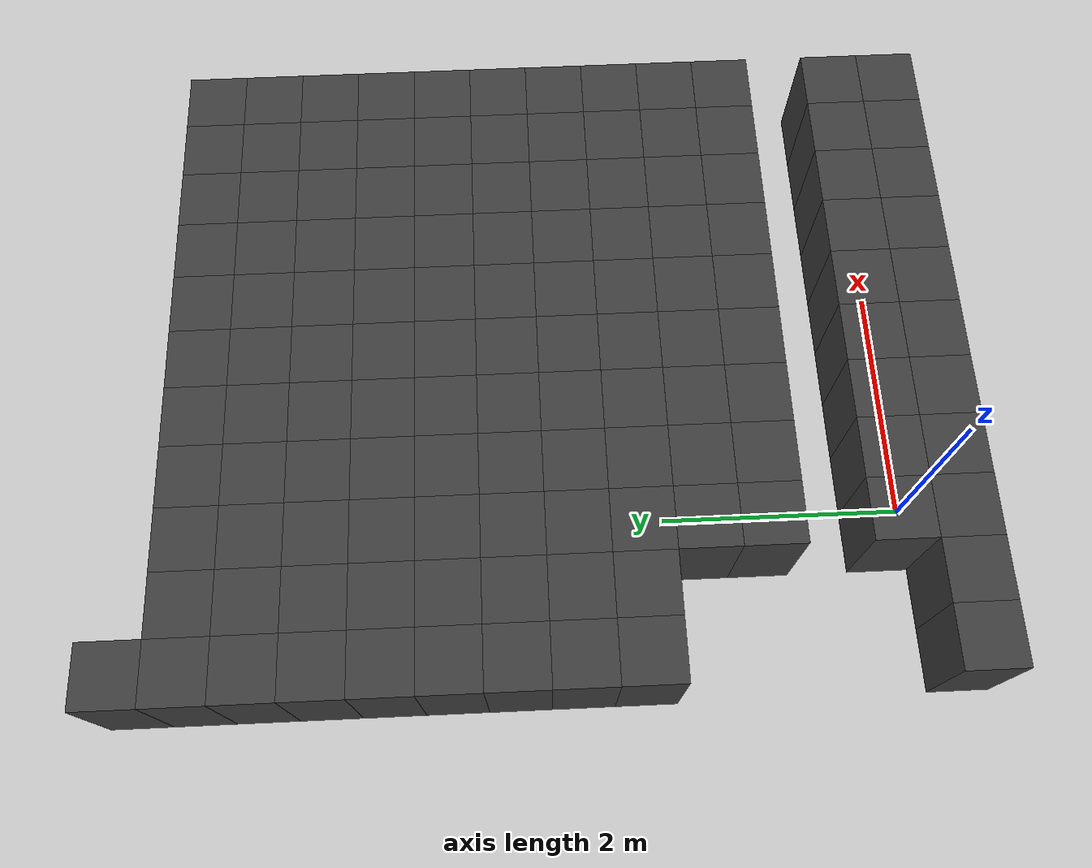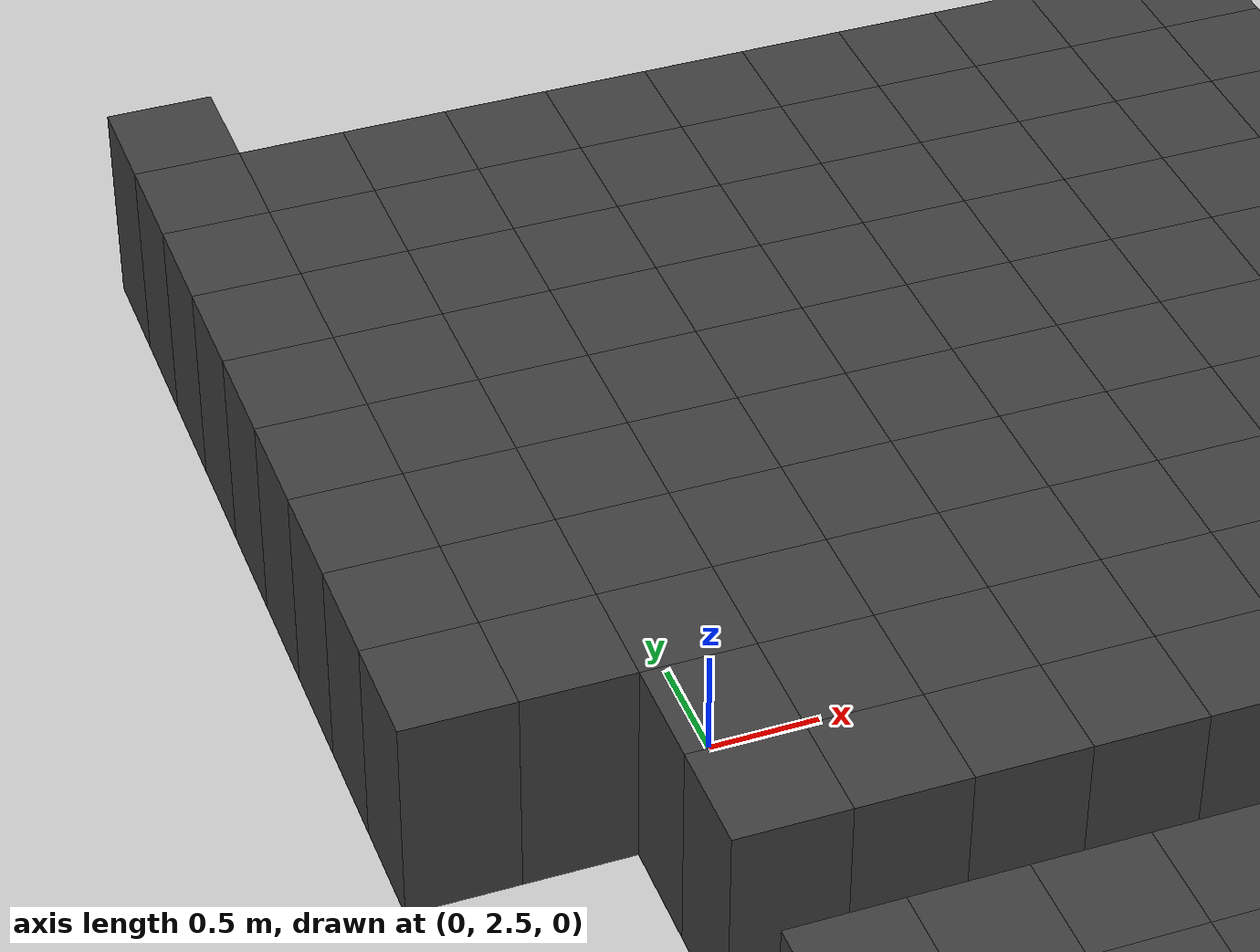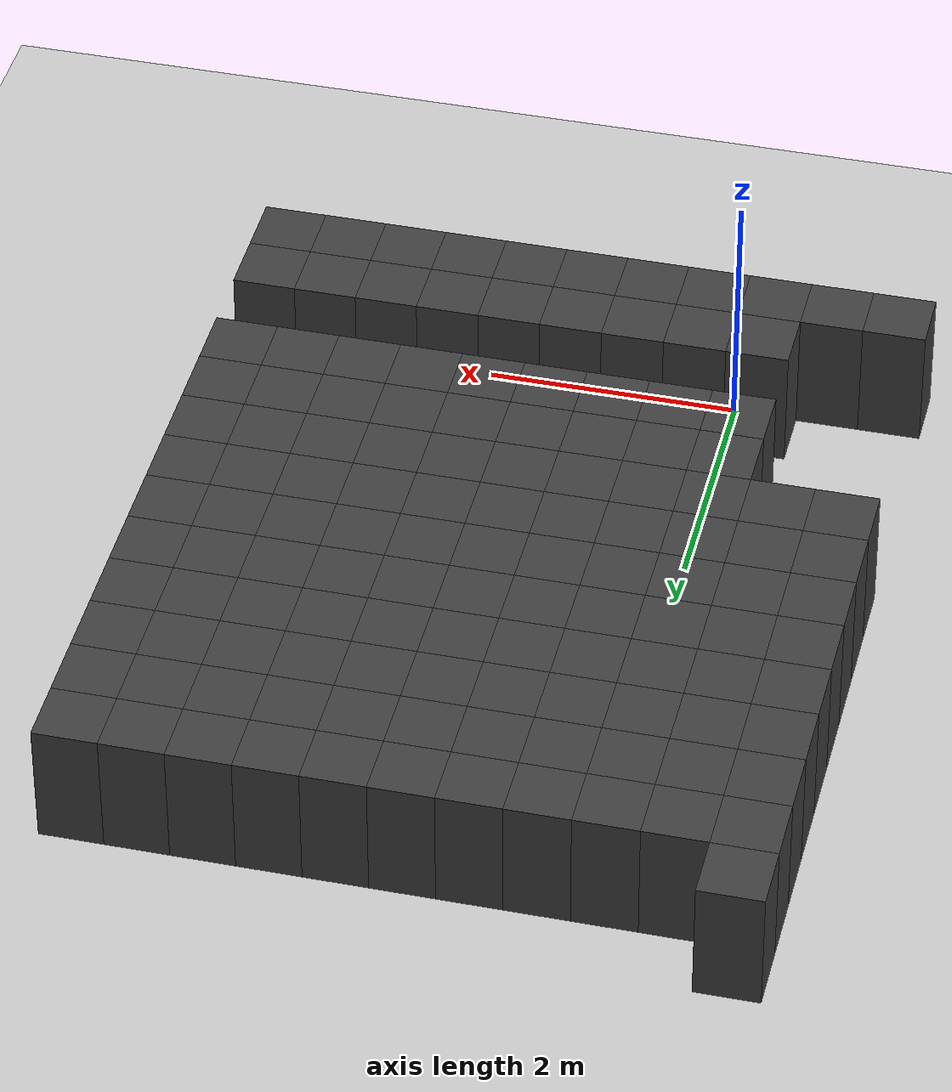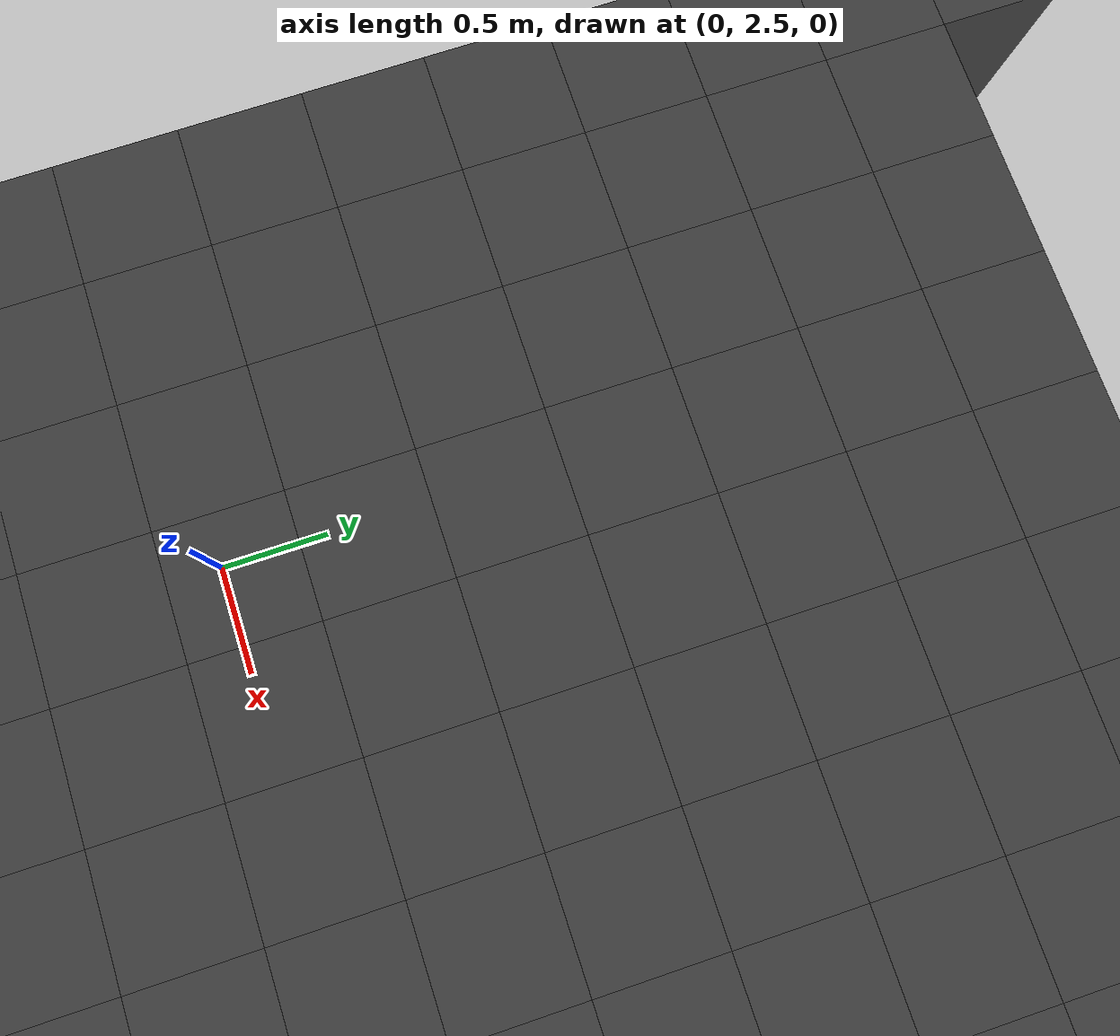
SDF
<sdf version="1.7">
 <world name="map_10777">
  <model name="ground_plane">
   <static>true</static>
   <link name="link">
    <collision name="collision">
     <geometry><plane><normal>0 0 1</normal><size>200 200</size></plane></geometry>
    </collision>
    <visual name="visual">
     <geometry><plane><normal>0 0 1</normal><size>200 200</size></plane></geometry>
     <material><ambient>0.8 0.8 0.8 1</ambient><diffuse>0.8 0.8 0.8 1</diffuse></material>
    </visual>
   </link>
  </model>
  <model name="maze_environment">
   <static>true</static>
   <link name="wall_592">
    <pose>-1.250 6.250 0.500 0 0 0</pose>
    <collision name="col"><geometry><box><size>0.5 0.5 1.0</size></box></geometry></collision>
    <visual name="vis">
     <geometry><box><size>0.5 0.5 1.0</size></box></geometry>
     <material><ambient>0.15 0.15 0.15 1</ambient><diffuse>0.25 0.25 0.25 1</diffuse></material>
    </visual>
   </link>
   <link name="wall_633">
    <pose>-1.250 5.750 0.500 0 0 0</pose>
    <collision name="col"><geometry><box><size>0.5 0.5 1.0</size></box></geometry></collision>
    <visual name="vis">
     <geometry><box><size>0.5 0.5 1.0</size></box></geometry>
     <material><ambient>0.15 0.15 0.15 1</ambient><diffuse>0.25 0.25 0.25 1</diffuse></material>
    </visual>
   </link>
   <link name="wall_634">
    <pose>-0.750 5.750 0.500 0 0 0</pose>
    <collision name="col"><geometry><box><size>0.5 0.5 1.0</size></box></geometry></collision>
    <visual name="vis">
     <geometry><box><size>0.5 0.5 1.0</size></box></geometry>
     <material><ambient>0.15 0.15 0.15 1</ambient><diffuse>0.25 0.25 0.25 1</diffuse></material>
    </visual>
   </link>
   <link name="wall_635">
    <pose>-0.250 5.750 0.500 0 0 0</pose>
    <collision name="col"><geometry><box><size>0.5 0.5 1.0</size></box></geometry></collision>
    <visual name="vis">
     <geometry><box><size>0.5 0.5 1.0</size></box></geometry>
     <material><ambient>0.15 0.15 0.15 1</ambient><diffuse>0.25 0.25 0.25 1</diffuse></material>
    </visual>
   </link>
   <link name="wall_636">
    <pose>0.250 5.750 0.500 0 0 0</pose>
    <collision name="col"><geometry><box><size>0.5 0.5 1.0</size></box></geometry></collision>
    <visual name="vis">
     <geometry><box><size>0.5 0.5 1.0</size></box></geometry>
     <material><ambient>0.15 0.15 0.15 1</ambient><diffuse>0.25 0.25 0.25 1</diffuse></material>
    </visual>
   </link>
   <link name="wall_637">
    <pose>0.750 5.750 0.500 0 0 0</pose>
    <collision name="col"><geometry><box><size>0.5 0.5 1.0</size></box></geometry></collision>
    <visual name="vis">
     <geometry><box><size>0.5 0.5 1.0</size></box></geometry>
     <material><ambient>0.15 0.15 0.15 1</ambient><diffuse>0.25 0.25 0.25 1</diffuse></material>
    </visual>
   </link>
   <link name="wall_638">
    <pose>1.250 5.750 0.500 0 0 0</pose>
    <collision name="col"><geometry><box><size>0.5 0.5 1.0</size></box></geometry></collision>
    <visual name="vis">
     <geometry><box><size>0.5 0.5 1.0</size></box></geometry>
     <material><ambient>0.15 0.15 0.15 1</ambient><diffuse>0.25 0.25 0.25 1</diffuse></material>
    </visual>
   </link>
   <link name="wall_639">
    <pose>1.750 5.750 0.500 0 0 0</pose>
    <collision name="col"><geometry><box><size>0.5 0.5 1.0</size></box></geometry></collision>
    <visual name="vis">
     <geometry><box><size>0.5 0.5 1.0</size></box></geometry>
     <material><ambient>0.15 0.15 0.15 1</ambient><diffuse>0.25 0.25 0.25 1</diffuse></material>
    </visual>
   </link>
   <link name="wall_640">
    <pose>2.250 5.750 0.500 0 0 0</pose>
    <collision name="col"><geometry><box><size>0.5 0.5 1.0</size></box></geometry></collision>
    <visual name="vis">
     <geometry><box><size>0.5 0.5 1.0</size></box></geometry>
     <material><ambient>0.15 0.15 0.15 1</ambient><diffuse>0.25 0.25 0.25 1</diffuse></material>
    </visual>
   </link>
   <link name="wall_641">
    <pose>2.750 5.750 0.500 0 0 0</pose>
    <collision name="col"><geometry><box><size>0.5 0.5 1.0</size></box></geometry></collision>
    <visual name="vis">
     <geometry><box><size>0.5 0.5 1.0</size></box></geometry>
     <material><ambient>0.15 0.15 0.15 1</ambient><diffuse>0.25 0.25 0.25 1</diffuse></material>
    </visual>
   </link>
   <link name="wall_642">
    <pose>3.250 5.750 0.500 0 0 0</pose>
    <collision name="col"><geometry><box><size>0.5 0.5 1.0</size></box></geometry></collision>
    <visual name="vis">
     <geometry><box><size>0.5 0.5 1.0</size></box></geometry>
     <material><ambient>0.15 0.15 0.15 1</ambient><diffuse>0.25 0.25 0.25 1</diffuse></material>
    </visual>
   </link>
   <link name="wall_643">
    <pose>3.750 5.750 0.500 0 0 0</pose>
    <collision name="col"><geometry><box><size>0.5 0.5 1.0</size></box></geometry></collision>
    <visual name="vis">
     <geometry><box><size>0.5 0.5 1.0</size></box></geometry>
     <material><ambient>0.15 0.15 0.15 1</ambient><diffuse>0.25 0.25 0.25 1</diffuse></material>
    </visual>
   </link>
   <link name="wall_675">
    <pose>-1.250 5.250 0.500 0 0 0</pose>
    <collision name="col"><geometry><box><size>0.5 0.5 1.0</size></box></geometry></collision>
    <visual name="vis">
     <geometry><box><size>0.5 0.5 1.0</size></box></geometry>
     <material><ambient>0.15 0.15 0.15 1</ambient><diffuse>0.25 0.25 0.25 1</diffuse></material>
    </visual>
   </link>
   <link name="wall_676">
    <pose>-0.750 5.250 0.500 0 0 0</pose>
    <collision name="col"><geometry><box><size>0.5 0.5 1.0</size></box></geometry></collision>
    <visual name="vis">
     <geometry><box><size>0.5 0.5 1.0</size></box></geometry>
     <material><ambient>0.15 0.15 0.15 1</ambient><diffuse>0.25 0.25 0.25 1</diffuse></material>
    </visual>
   </link>
   <link name="wall_677">
    <pose>-0.250 5.250 0.500 0 0 0</pose>
    <collision name="col"><geometry><box><size>0.5 0.5 1.0</size></box></geometry></collision>
    <visual name="vis">
     <geometry><box><size>0.5 0.5 1.0</size></box></geometry>
     <material><ambient>0.15 0.15 0.15 1</ambient><diffuse>0.25 0.25 0.25 1</diffuse></material>
    </visual>
   </link>
   <link name="wall_678">
    <pose>0.250 5.250 0.500 0 0 0</pose>
    <collision name="col"><geometry><box><size>0.5 0.5 1.0</size></box></geometry></collision>
    <visual name="vis">
     <geometry><box><size>0.5 0.5 1.0</size></box></geometry>
     <material><ambient>0.15 0.15 0.15 1</ambient><diffuse>0.25 0.25 0.25 1</diffuse></material>
    </visual>
   </link>
   <link name="wall_679">
    <pose>0.750 5.250 0.500 0 0 0</pose>
    <collision name="col"><geometry><box><size>0.5 0.5 1.0</size></box></geometry></collision>
    <visual name="vis">
     <geometry><box><size>0.5 0.5 1.0</size></box></geometry>
     <material><ambient>0.15 0.15 0.15 1</ambient><diffuse>0.25 0.25 0.25 1</diffuse></material>
    </visual>
   </link>
   <link name="wall_680">
    <pose>1.250 5.250 0.500 0 0 0</pose>
    <collision name="col"><geometry><box><size>0.5 0.5 1.0</size></box></geometry></collision>
    <visual name="vis">
     <geometry><box><size>0.5 0.5 1.0</size></box></geometry>
     <material><ambient>0.15 0.15 0.15 1</ambient><diffuse>0.25 0.25 0.25 1</diffuse></material>
    </visual>
   </link>
   <link name="wall_681">
    <pose>1.750 5.250 0.500 0 0 0</pose>
    <collision name="col"><geometry><box><size>0.5 0.5 1.0</size></box></geometry></collision>
    <visual name="vis">
     <geometry><box><size>0.5 0.5 1.0</size></box></geometry>
     <material><ambient>0.15 0.15 0.15 1</ambient><diffuse>0.25 0.25 0.25 1</diffuse></material>
    </visual>
   </link>
   <link name="wall_682">
    <pose>2.250 5.250 0.500 0 0 0</pose>
    <collision name="col"><geometry><box><size>0.5 0.5 1.0</size></box></geometry></collision>
    <visual name="vis">
     <geometry><box><size>0.5 0.5 1.0</size></box></geometry>
     <material><ambient>0.15 0.15 0.15 1</ambient><diffuse>0.25 0.25 0.25 1</diffuse></material>
    </visual>
   </link>
   <link name="wall_683">
    <pose>2.750 5.250 0.500 0 0 0</pose>
    <collision name="col"><geometry><box><size>0.5 0.5 1.0</size></box></geometry></collision>
    <visual name="vis">
     <geometry><box><size>0.5 0.5 1.0</size></box></geometry>
     <material><ambient>0.15 0.15 0.15 1</ambient><diffuse>0.25 0.25 0.25 1</diffuse></material>
    </visual>
   </link>
   <link name="wall_684">
    <pose>3.250 5.250 0.500 0 0 0</pose>
    <collision name="col"><geometry><box><size>0.5 0.5 1.0</size></box></geometry></collision>
    <visual name="vis">
     <geometry><box><size>0.5 0.5 1.0</size></box></geometry>
     <material><ambient>0.15 0.15 0.15 1</ambient><diffuse>0.25 0.25 0.25 1</diffuse></material>
    </visual>
   </link>
   <link name="wall_685">
    <pose>3.750 5.250 0.500 0 0 0</pose>
    <collision name="col"><geometry><box><size>0.5 0.5 1.0</size></box></geometry></collision>
    <visual name="vis">
     <geometry><box><size>0.5 0.5 1.0</size></box></geometry>
     <material><ambient>0.15 0.15 0.15 1</ambient><diffuse>0.25 0.25 0.25 1</diffuse></material>
    </visual>
   </link>
   <link name="wall_717">
    <pose>-1.250 4.750 0.500 0 0 0</pose>
    <collision name="col"><geometry><box><size>0.5 0.5 1.0</size></box></geometry></collision>
    <visual name="vis">
     <geometry><box><size>0.5 0.5 1.0</size></box></geometry>
     <material><ambient>0.15 0.15 0.15 1</ambient><diffuse>0.25 0.25 0.25 1</diffuse></material>
    </visual>
   </link>
   <link name="wall_718">
    <pose>-0.750 4.750 0.500 0 0 0</pose>
    <collision name="col"><geometry><box><size>0.5 0.5 1.0</size></box></geometry></collision>
    <visual name="vis">
     <geometry><box><size>0.5 0.5 1.0</size></box></geometry>
     <material><ambient>0.15 0.15 0.15 1</ambient><diffuse>0.25 0.25 0.25 1</diffuse></material>
    </visual>
   </link>
   <link name="wall_719">
    <pose>-0.250 4.750 0.500 0 0 0</pose>
    <collision name="col"><geometry><box><size>0.5 0.5 1.0</size></box></geometry></collision>
    <visual name="vis">
     <geometry><box><size>0.5 0.5 1.0</size></box></geometry>
     <material><ambient>0.15 0.15 0.15 1</ambient><diffuse>0.25 0.25 0.25 1</diffuse></material>
    </visual>
   </link>
   <link name="wall_720">
    <pose>0.250 4.750 0.500 0 0 0</pose>
    <collision name="col"><geometry><box><size>0.5 0.5 1.0</size></box></geometry></collision>
    <visual name="vis">
     <geometry><box><size>0.5 0.5 1.0</size></box></geometry>
     <material><ambient>0.15 0.15 0.15 1</ambient><diffuse>0.25 0.25 0.25 1</diffuse></material>
    </visual>
   </link>
   <link name="wall_721">
    <pose>0.750 4.750 0.500 0 0 0</pose>
    <collision name="col"><geometry><box><size>0.5 0.5 1.0</size></box></geometry></collision>
    <visual name="vis">
     <geometry><box><size>0.5 0.5 1.0</size></box></geometry>
     <material><ambient>0.15 0.15 0.15 1</ambient><diffuse>0.25 0.25 0.25 1</diffuse></material>
    </visual>
   </link>
   <link name="wall_722">
    <pose>1.250 4.750 0.500 0 0 0</pose>
    <collision name="col"><geometry><box><size>0.5 0.5 1.0</size></box></geometry></collision>
    <visual name="vis">
     <geometry><box><size>0.5 0.5 1.0</size></box></geometry>
     <material><ambient>0.15 0.15 0.15 1</ambient><diffuse>0.25 0.25 0.25 1</diffuse></material>
    </visual>
   </link>
   <link name="wall_723">
    <pose>1.750 4.750 0.500 0 0 0</pose>
    <collision name="col"><geometry><box><size>0.5 0.5 1.0</size></box></geometry></collision>
    <visual name="vis">
     <geometry><box><size>0.5 0.5 1.0</size></box></geometry>
     <material><ambient>0.15 0.15 0.15 1</ambient><diffuse>0.25 0.25 0.25 1</diffuse></material>
    </visual>
   </link>
   <link name="wall_724">
    <pose>2.250 4.750 0.500 0 0 0</pose>
    <collision name="col"><geometry><box><size>0.5 0.5 1.0</size></box></geometry></collision>
    <visual name="vis">
     <geometry><box><size>0.5 0.5 1.0</size></box></geometry>
     <material><ambient>0.15 0.15 0.15 1</ambient><diffuse>0.25 0.25 0.25 1</diffuse></material>
    </visual>
   </link>
   <link name="wall_725">
    <pose>2.750 4.750 0.500 0 0 0</pose>
    <collision name="col"><geometry><box><size>0.5 0.5 1.0</size></box></geometry></collision>
    <visual name="vis">
     <geometry><box><size>0.5 0.5 1.0</size></box></geometry>
     <material><ambient>0.15 0.15 0.15 1</ambient><diffuse>0.25 0.25 0.25 1</diffuse></material>
    </visual>
   </link>
   <link name="wall_726">
    <pose>3.250 4.750 0.500 0 0 0</pose>
    <collision name="col"><geometry><box><size>0.5 0.5 1.0</size></box></geometry></collision>
    <visual name="vis">
     <geometry><box><size>0.5 0.5 1.0</size></box></geometry>
     <material><ambient>0.15 0.15 0.15 1</ambient><diffuse>0.25 0.25 0.25 1</diffuse></material>
    </visual>
   </link>
   <link name="wall_727">
    <pose>3.750 4.750 0.500 0 0 0</pose>
    <collision name="col"><geometry><box><size>0.5 0.5 1.0</size></box></geometry></collision>
    <visual name="vis">
     <geometry><box><size>0.5 0.5 1.0</size></box></geometry>
     <material><ambient>0.15 0.15 0.15 1</ambient><diffuse>0.25 0.25 0.25 1</diffuse></material>
    </visual>
   </link>
   <link name="wall_765">
    <pose>-1.250 4.250 0.500 0 0 0</pose>
    <collision name="col"><geometry><box><size>0.5 0.5 1.0</size></box></geometry></collision>
    <visual name="vis">
     <geometry><box><size>0.5 0.5 1.0</size></box></geometry>
     <material><ambient>0.15 0.15 0.15 1</ambient><diffuse>0.25 0.25 0.25 1</diffuse></material>
    </visual>
   </link>
   <link name="wall_766">
    <pose>-0.750 4.250 0.500 0 0 0</pose>
    <collision name="col"><geometry><box><size>0.5 0.5 1.0</size></box></geometry></collision>
    <visual name="vis">
     <geometry><box><size>0.5 0.5 1.0</size></box></geometry>
     <material><ambient>0.15 0.15 0.15 1</ambient><diffuse>0.25 0.25 0.25 1</diffuse></material>
    </visual>
   </link>
   <link name="wall_767">
    <pose>-0.250 4.250 0.500 0 0 0</pose>
    <collision name="col"><geometry><box><size>0.5 0.5 1.0</size></box></geometry></collision>
    <visual name="vis">
     <geometry><box><size>0.5 0.5 1.0</size></box></geometry>
     <material><ambient>0.15 0.15 0.15 1</ambient><diffuse>0.25 0.25 0.25 1</diffuse></material>
    </visual>
   </link>
   <link name="wall_768">
    <pose>0.250 4.250 0.500 0 0 0</pose>
    <collision name="col"><geometry><box><size>0.5 0.5 1.0</size></box></geometry></collision>
    <visual name="vis">
     <geometry><box><size>0.5 0.5 1.0</size></box></geometry>
     <material><ambient>0.15 0.15 0.15 1</ambient><diffuse>0.25 0.25 0.25 1</diffuse></material>
    </visual>
   </link>
   <link name="wall_769">
    <pose>0.750 4.250 0.500 0 0 0</pose>
    <collision name="col"><geometry><box><size>0.5 0.5 1.0</size></box></geometry></collision>
    <visual name="vis">
     <geometry><box><size>0.5 0.5 1.0</size></box></geometry>
     <material><ambient>0.15 0.15 0.15 1</ambient><diffuse>0.25 0.25 0.25 1</diffuse></material>
    </visual>
   </link>
   <link name="wall_770">
    <pose>1.250 4.250 0.500 0 0 0</pose>
    <collision name="col"><geometry><box><size>0.5 0.5 1.0</size></box></geometry></collision>
    <visual name="vis">
     <geometry><box><size>0.5 0.5 1.0</size></box></geometry>
     <material><ambient>0.15 0.15 0.15 1</ambient><diffuse>0.25 0.25 0.25 1</diffuse></material>
    </visual>
   </link>
   <link name="wall_771">
    <pose>1.750 4.250 0.500 0 0 0</pose>
    <collision name="col"><geometry><box><size>0.5 0.5 1.0</size></box></geometry></collision>
    <visual name="vis">
     <geometry><box><size>0.5 0.5 1.0</size></box></geometry>
     <material><ambient>0.15 0.15 0.15 1</ambient><diffuse>0.25 0.25 0.25 1</diffuse></material>
    </visual>
   </link>
   <link name="wall_772">
    <pose>2.250 4.250 0.500 0 0 0</pose>
    <collision name="col"><geometry><box><size>0.5 0.5 1.0</size></box></geometry></collision>
    <visual name="vis">
     <geometry><box><size>0.5 0.5 1.0</size></box></geometry>
     <material><ambient>0.15 0.15 0.15 1</ambient><diffuse>0.25 0.25 0.25 1</diffuse></material>
    </visual>
   </link>
   <link name="wall_773">
    <pose>2.750 4.250 0.500 0 0 0</pose>
    <collision name="col"><geometry><box><size>0.5 0.5 1.0</size></box></geometry></collision>
    <visual name="vis">
     <geometry><box><size>0.5 0.5 1.0</size></box></geometry>
     <material><ambient>0.15 0.15 0.15 1</ambient><diffuse>0.25 0.25 0.25 1</diffuse></material>
    </visual>
   </link>
   <link name="wall_774">
    <pose>3.250 4.250 0.500 0 0 0</pose>
    <collision name="col"><geometry><box><size>0.5 0.5 1.0</size></box></geometry></collision>
    <visual name="vis">
     <geometry><box><size>0.5 0.5 1.0</size></box></geometry>
     <material><ambient>0.15 0.15 0.15 1</ambient><diffuse>0.25 0.25 0.25 1</diffuse></material>
    </visual>
   </link>
   <link name="wall_775">
    <pose>3.750 4.250 0.500 0 0 0</pose>
    <collision name="col"><geometry><box><size>0.5 0.5 1.0</size></box></geometry></collision>
    <visual name="vis">
     <geometry><box><size>0.5 0.5 1.0</size></box></geometry>
     <material><ambient>0.15 0.15 0.15 1</ambient><diffuse>0.25 0.25 0.25 1</diffuse></material>
    </visual>
   </link>
   <link name="wall_813">
    <pose>-1.250 3.750 0.500 0 0 0</pose>
    <collision name="col"><geometry><box><size>0.5 0.5 1.0</size></box></geometry></collision>
    <visual name="vis">
     <geometry><box><size>0.5 0.5 1.0</size></box></geometry>
     <material><ambient>0.15 0.15 0.15 1</ambient><diffuse>0.25 0.25 0.25 1</diffuse></material>
    </visual>
   </link>
   <link name="wall_814">
    <pose>-0.750 3.750 0.500 0 0 0</pose>
    <collision name="col"><geometry><box><size>0.5 0.5 1.0</size></box></geometry></collision>
    <visual name="vis">
     <geometry><box><size>0.5 0.5 1.0</size></box></geometry>
     <material><ambient>0.15 0.15 0.15 1</ambient><diffuse>0.25 0.25 0.25 1</diffuse></material>
    </visual>
   </link>
   <link name="wall_815">
    <pose>-0.250 3.750 0.500 0 0 0</pose>
    <collision name="col"><geometry><box><size>0.5 0.5 1.0</size></box></geometry></collision>
    <visual name="vis">
     <geometry><box><size>0.5 0.5 1.0</size></box></geometry>
     <material><ambient>0.15 0.15 0.15 1</ambient><diffuse>0.25 0.25 0.25 1</diffuse></material>
    </visual>
   </link>
   <link name="wall_816">
    <pose>0.250 3.750 0.500 0 0 0</pose>
    <collision name="col"><geometry><box><size>0.5 0.5 1.0</size></box></geometry></collision>
    <visual name="vis">
     <geometry><box><size>0.5 0.5 1.0</size></box></geometry>
     <material><ambient>0.15 0.15 0.15 1</ambient><diffuse>0.25 0.25 0.25 1</diffuse></material>
    </visual>
   </link>
   <link name="wall_817">
    <pose>0.750 3.750 0.500 0 0 0</pose>
    <collision name="col"><geometry><box><size>0.5 0.5 1.0</size></box></geometry></collision>
    <visual name="vis">
     <geometry><box><size>0.5 0.5 1.0</size></box></geometry>
     <material><ambient>0.15 0.15 0.15 1</ambient><diffuse>0.25 0.25 0.25 1</diffuse></material>
    </visual>
   </link>
   <link name="wall_818">
    <pose>1.250 3.750 0.500 0 0 0</pose>
    <collision name="col"><geometry><box><size>0.5 0.5 1.0</size></box></geometry></collision>
    <visual name="vis">
     <geometry><box><size>0.5 0.5 1.0</size></box></geometry>
     <material><ambient>0.15 0.15 0.15 1</ambient><diffuse>0.25 0.25 0.25 1</diffuse></material>
    </visual>
   </link>
   <link name="wall_819">
    <pose>1.750 3.750 0.500 0 0 0</pose>
    <collision name="col"><geometry><box><size>0.5 0.5 1.0</size></box></geometry></collision>
    <visual name="vis">
     <geometry><box><size>0.5 0.5 1.0</size></box></geometry>
     <material><ambient>0.15 0.15 0.15 1</ambient><diffuse>0.25 0.25 0.25 1</diffuse></material>
    </visual>
   </link>
   <link name="wall_820">
    <pose>2.250 3.750 0.500 0 0 0</pose>
    <collision name="col"><geometry><box><size>0.5 0.5 1.0</size></box></geometry></collision>
    <visual name="vis">
     <geometry><box><size>0.5 0.5 1.0</size></box></geometry>
     <material><ambient>0.15 0.15 0.15 1</ambient><diffuse>0.25 0.25 0.25 1</diffuse></material>
    </visual>
   </link>
   <link name="wall_821">
    <pose>2.750 3.750 0.500 0 0 0</pose>
    <collision name="col"><geometry><box><size>0.5 0.5 1.0</size></box></geometry></collision>
    <visual name="vis">
     <geometry><box><size>0.5 0.5 1.0</size></box></geometry>
     <material><ambient>0.15 0.15 0.15 1</ambient><diffuse>0.25 0.25 0.25 1</diffuse></material>
    </visual>
   </link>
   <link name="wall_822">
    <pose>3.250 3.750 0.500 0 0 0</pose>
    <collision name="col"><geometry><box><size>0.5 0.5 1.0</size></box></geometry></collision>
    <visual name="vis">
     <geometry><box><size>0.5 0.5 1.0</size></box></geometry>
     <material><ambient>0.15 0.15 0.15 1</ambient><diffuse>0.25 0.25 0.25 1</diffuse></material>
    </visual>
   </link>
   <link name="wall_823">
    <pose>3.750 3.750 0.500 0 0 0</pose>
    <collision name="col"><geometry><box><size>0.5 0.5 1.0</size></box></geometry></collision>
    <visual name="vis">
     <geometry><box><size>0.5 0.5 1.0</size></box></geometry>
     <material><ambient>0.15 0.15 0.15 1</ambient><diffuse>0.25 0.25 0.25 1</diffuse></material>
    </visual>
   </link>
   <link name="wall_861">
    <pose>-1.250 3.250 0.500 0 0 0</pose>
    <collision name="col"><geometry><box><size>0.5 0.5 1.0</size></box></geometry></collision>
    <visual name="vis">
     <geometry><box><size>0.5 0.5 1.0</size></box></geometry>
     <material><ambient>0.15 0.15 0.15 1</ambient><diffuse>0.25 0.25 0.25 1</diffuse></material>
    </visual>
   </link>
   <link name="wall_862">
    <pose>-0.750 3.250 0.500 0 0 0</pose>
    <collision name="col"><geometry><box><size>0.5 0.5 1.0</size></box></geometry></collision>
    <visual name="vis">
     <geometry><box><size>0.5 0.5 1.0</size></box></geometry>
     <material><ambient>0.15 0.15 0.15 1</ambient><diffuse>0.25 0.25 0.25 1</diffuse></material>
    </visual>
   </link>
   <link name="wall_863">
    <pose>-0.250 3.250 0.500 0 0 0</pose>
    <collision name="col"><geometry><box><size>0.5 0.5 1.0</size></box></geometry></collision>
    <visual name="vis">
     <geometry><box><size>0.5 0.5 1.0</size></box></geometry>
     <material><ambient>0.15 0.15 0.15 1</ambient><diffuse>0.25 0.25 0.25 1</diffuse></material>
    </visual>
   </link>
   <link name="wall_864">
    <pose>0.250 3.250 0.500 0 0 0</pose>
    <collision name="col"><geometry><box><size>0.5 0.5 1.0</size></box></geometry></collision>
    <visual name="vis">
     <geometry><box><size>0.5 0.5 1.0</size></box></geometry>
     <material><ambient>0.15 0.15 0.15 1</ambient><diffuse>0.25 0.25 0.25 1</diffuse></material>
    </visual>
   </link>
   <link name="wall_865">
    <pose>0.750 3.250 0.500 0 0 0</pose>
    <collision name="col"><geometry><box><size>0.5 0.5 1.0</size></box></geometry></collision>
    <visual name="vis">
     <geometry><box><size>0.5 0.5 1.0</size></box></geometry>
     <material><ambient>0.15 0.15 0.15 1</ambient><diffuse>0.25 0.25 0.25 1</diffuse></material>
    </visual>
   </link>
   <link name="wall_866">
    <pose>1.250 3.250 0.500 0 0 0</pose>
    <collision name="col"><geometry><box><size>0.5 0.5 1.0</size></box></geometry></collision>
    <visual name="vis">
     <geometry><box><size>0.5 0.5 1.0</size></box></geometry>
     <material><ambient>0.15 0.15 0.15 1</ambient><diffuse>0.25 0.25 0.25 1</diffuse></material>
    </visual>
   </link>
   <link name="wall_867">
    <pose>1.750 3.250 0.500 0 0 0</pose>
    <collision name="col"><geometry><box><size>0.5 0.5 1.0</size></box></geometry></collision>
    <visual name="vis">
     <geometry><box><size>0.5 0.5 1.0</size></box></geometry>
     <material><ambient>0.15 0.15 0.15 1</ambient><diffuse>0.25 0.25 0.25 1</diffuse></material>
    </visual>
   </link>
   <link name="wall_868">
    <pose>2.250 3.250 0.500 0 0 0</pose>
    <collision name="col"><geometry><box><size>0.5 0.5 1.0</size></box></geometry></collision>
    <visual name="vis">
     <geometry><box><size>0.5 0.5 1.0</size></box></geometry>
     <material><ambient>0.15 0.15 0.15 1</ambient><diffuse>0.25 0.25 0.25 1</diffuse></material>
    </visual>
   </link>
   <link name="wall_869">
    <pose>2.750 3.250 0.500 0 0 0</pose>
    <collision name="col"><geometry><box><size>0.5 0.5 1.0</size></box></geometry></collision>
    <visual name="vis">
     <geometry><box><size>0.5 0.5 1.0</size></box></geometry>
     <material><ambient>0.15 0.15 0.15 1</ambient><diffuse>0.25 0.25 0.25 1</diffuse></material>
    </visual>
   </link>
   <link name="wall_870">
    <pose>3.250 3.250 0.500 0 0 0</pose>
    <collision name="col"><geometry><box><size>0.5 0.5 1.0</size></box></geometry></collision>
    <visual name="vis">
     <geometry><box><size>0.5 0.5 1.0</size></box></geometry>
     <material><ambient>0.15 0.15 0.15 1</ambient><diffuse>0.25 0.25 0.25 1</diffuse></material>
    </visual>
   </link>
   <link name="wall_871">
    <pose>3.750 3.250 0.500 0 0 0</pose>
    <collision name="col"><geometry><box><size>0.5 0.5 1.0</size></box></geometry></collision>
    <visual name="vis">
     <geometry><box><size>0.5 0.5 1.0</size></box></geometry>
     <material><ambient>0.15 0.15 0.15 1</ambient><diffuse>0.25 0.25 0.25 1</diffuse></material>
    </visual>
   </link>
   <link name="wall_909">
    <pose>-1.250 2.750 0.500 0 0 0</pose>
    <collision name="col"><geometry><box><size>0.5 0.5 1.0</size></box></geometry></collision>
    <visual name="vis">
     <geometry><box><size>0.5 0.5 1.0</size></box></geometry>
     <material><ambient>0.15 0.15 0.15 1</ambient><diffuse>0.25 0.25 0.25 1</diffuse></material>
    </visual>
   </link>
   <link name="wall_910">
    <pose>-0.750 2.750 0.500 0 0 0</pose>
    <collision name="col"><geometry><box><size>0.5 0.5 1.0</size></box></geometry></collision>
    <visual name="vis">
     <geometry><box><size>0.5 0.5 1.0</size></box></geometry>
     <material><ambient>0.15 0.15 0.15 1</ambient><diffuse>0.25 0.25 0.25 1</diffuse></material>
    </visual>
   </link>
   <link name="wall_911">
    <pose>-0.250 2.750 0.500 0 0 0</pose>
    <collision name="col"><geometry><box><size>0.5 0.5 1.0</size></box></geometry></collision>
    <visual name="vis">
     <geometry><box><size>0.5 0.5 1.0</size></box></geometry>
     <material><ambient>0.15 0.15 0.15 1</ambient><diffuse>0.25 0.25 0.25 1</diffuse></material>
    </visual>
   </link>
   <link name="wall_912">
    <pose>0.250 2.750 0.500 0 0 0</pose>
    <collision name="col"><geometry><box><size>0.5 0.5 1.0</size></box></geometry></collision>
    <visual name="vis">
     <geometry><box><size>0.5 0.5 1.0</size></box></geometry>
     <material><ambient>0.15 0.15 0.15 1</ambient><diffuse>0.25 0.25 0.25 1</diffuse></material>
    </visual>
   </link>
   <link name="wall_913">
    <pose>0.750 2.750 0.500 0 0 0</pose>
    <collision name="col"><geometry><box><size>0.5 0.5 1.0</size></box></geometry></collision>
    <visual name="vis">
     <geometry><box><size>0.5 0.5 1.0</size></box></geometry>
     <material><ambient>0.15 0.15 0.15 1</ambient><diffuse>0.25 0.25 0.25 1</diffuse></material>
    </visual>
   </link>
   <link name="wall_914">
    <pose>1.250 2.750 0.500 0 0 0</pose>
    <collision name="col"><geometry><box><size>0.5 0.5 1.0</size></box></geometry></collision>
    <visual name="vis">
     <geometry><box><size>0.5 0.5 1.0</size></box></geometry>
     <material><ambient>0.15 0.15 0.15 1</ambient><diffuse>0.25 0.25 0.25 1</diffuse></material>
    </visual>
   </link>
   <link name="wall_915">
    <pose>1.750 2.750 0.500 0 0 0</pose>
    <collision name="col"><geometry><box><size>0.5 0.5 1.0</size></box></geometry></collision>
    <visual name="vis">
     <geometry><box><size>0.5 0.5 1.0</size></box></geometry>
     <material><ambient>0.15 0.15 0.15 1</ambient><diffuse>0.25 0.25 0.25 1</diffuse></material>
    </visual>
   </link>
   <link name="wall_916">
    <pose>2.250 2.750 0.500 0 0 0</pose>
    <collision name="col"><geometry><box><size>0.5 0.5 1.0</size></box></geometry></collision>
    <visual name="vis">
     <geometry><box><size>0.5 0.5 1.0</size></box></geometry>
     <material><ambient>0.15 0.15 0.15 1</ambient><diffuse>0.25 0.25 0.25 1</diffuse></material>
    </visual>
   </link>
   <link name="wall_917">
    <pose>2.750 2.750 0.500 0 0 0</pose>
    <collision name="col"><geometry><box><size>0.5 0.5 1.0</size></box></geometry></collision>
    <visual name="vis">
     <geometry><box><size>0.5 0.5 1.0</size></box></geometry>
     <material><ambient>0.15 0.15 0.15 1</ambient><diffuse>0.25 0.25 0.25 1</diffuse></material>
    </visual>
   </link>
   <link name="wall_918">
    <pose>3.250 2.750 0.500 0 0 0</pose>
    <collision name="col"><geometry><box><size>0.5 0.5 1.0</size></box></geometry></collision>
    <visual name="vis">
     <geometry><box><size>0.5 0.5 1.0</size></box></geometry>
     <material><ambient>0.15 0.15 0.15 1</ambient><diffuse>0.25 0.25 0.25 1</diffuse></material>
    </visual>
   </link>
   <link name="wall_919">
    <pose>3.750 2.750 0.500 0 0 0</pose>
    <collision name="col"><geometry><box><size>0.5 0.5 1.0</size></box></geometry></collision>
    <visual name="vis">
     <geometry><box><size>0.5 0.5 1.0</size></box></geometry>
     <material><ambient>0.15 0.15 0.15 1</ambient><diffuse>0.25 0.25 0.25 1</diffuse></material>
    </visual>
   </link>
   <link name="wall_957">
    <pose>-1.250 2.250 0.500 0 0 0</pose>
    <collision name="col"><geometry><box><size>0.5 0.5 1.0</size></box></geometry></collision>
    <visual name="vis">
     <geometry><box><size>0.5 0.5 1.0</size></box></geometry>
     <material><ambient>0.15 0.15 0.15 1</ambient><diffuse>0.25 0.25 0.25 1</diffuse></material>
    </visual>
   </link>
   <link name="wall_958">
    <pose>-0.750 2.250 0.500 0 0 0</pose>
    <collision name="col"><geometry><box><size>0.5 0.5 1.0</size></box></geometry></collision>
    <visual name="vis">
     <geometry><box><size>0.5 0.5 1.0</size></box></geometry>
     <material><ambient>0.15 0.15 0.15 1</ambient><diffuse>0.25 0.25 0.25 1</diffuse></material>
    </visual>
   </link>
   <link name="wall_959">
    <pose>-0.250 2.250 0.500 0 0 0</pose>
    <collision name="col"><geometry><box><size>0.5 0.5 1.0</size></box></geometry></collision>
    <visual name="vis">
     <geometry><box><size>0.5 0.5 1.0</size></box></geometry>
     <material><ambient>0.15 0.15 0.15 1</ambient><diffuse>0.25 0.25 0.25 1</diffuse></material>
    </visual>
   </link>
   <link name="wall_960">
    <pose>0.250 2.250 0.500 0 0 0</pose>
    <collision name="col"><geometry><box><size>0.5 0.5 1.0</size></box></geometry></collision>
    <visual name="vis">
     <geometry><box><size>0.5 0.5 1.0</size></box></geometry>
     <material><ambient>0.15 0.15 0.15 1</ambient><diffuse>0.25 0.25 0.25 1</diffuse></material>
    </visual>
   </link>
   <link name="wall_961">
    <pose>0.750 2.250 0.500 0 0 0</pose>
    <collision name="col"><geometry><box><size>0.5 0.5 1.0</size></box></geometry></collision>
    <visual name="vis">
     <geometry><box><size>0.5 0.5 1.0</size></box></geometry>
     <material><ambient>0.15 0.15 0.15 1</ambient><diffuse>0.25 0.25 0.25 1</diffuse></material>
    </visual>
   </link>
   <link name="wall_962">
    <pose>1.250 2.250 0.500 0 0 0</pose>
    <collision name="col"><geometry><box><size>0.5 0.5 1.0</size></box></geometry></collision>
    <visual name="vis">
     <geometry><box><size>0.5 0.5 1.0</size></box></geometry>
     <material><ambient>0.15 0.15 0.15 1</ambient><diffuse>0.25 0.25 0.25 1</diffuse></material>
    </visual>
   </link>
   <link name="wall_963">
    <pose>1.750 2.250 0.500 0 0 0</pose>
    <collision name="col"><geometry><box><size>0.5 0.5 1.0</size></box></geometry></collision>
    <visual name="vis">
     <geometry><box><size>0.5 0.5 1.0</size></box></geometry>
     <material><ambient>0.15 0.15 0.15 1</ambient><diffuse>0.25 0.25 0.25 1</diffuse></material>
    </visual>
   </link>
   <link name="wall_964">
    <pose>2.250 2.250 0.500 0 0 0</pose>
    <collision name="col"><geometry><box><size>0.5 0.5 1.0</size></box></geometry></collision>
    <visual name="vis">
     <geometry><box><size>0.5 0.5 1.0</size></box></geometry>
     <material><ambient>0.15 0.15 0.15 1</ambient><diffuse>0.25 0.25 0.25 1</diffuse></material>
    </visual>
   </link>
   <link name="wall_965">
    <pose>2.750 2.250 0.500 0 0 0</pose>
    <collision name="col"><geometry><box><size>0.5 0.5 1.0</size></box></geometry></collision>
    <visual name="vis">
     <geometry><box><size>0.5 0.5 1.0</size></box></geometry>
     <material><ambient>0.15 0.15 0.15 1</ambient><diffuse>0.25 0.25 0.25 1</diffuse></material>
    </visual>
   </link>
   <link name="wall_966">
    <pose>3.250 2.250 0.500 0 0 0</pose>
    <collision name="col"><geometry><box><size>0.5 0.5 1.0</size></box></geometry></collision>
    <visual name="vis">
     <geometry><box><size>0.5 0.5 1.0</size></box></geometry>
     <material><ambient>0.15 0.15 0.15 1</ambient><diffuse>0.25 0.25 0.25 1</diffuse></material>
    </visual>
   </link>
   <link name="wall_967">
    <pose>3.750 2.250 0.500 0 0 0</pose>
    <collision name="col"><geometry><box><size>0.5 0.5 1.0</size></box></geometry></collision>
    <visual name="vis">
     <geometry><box><size>0.5 0.5 1.0</size></box></geometry>
     <material><ambient>0.15 0.15 0.15 1</ambient><diffuse>0.25 0.25 0.25 1</diffuse></material>
    </visual>
   </link>
   <link name="wall_1001">
    <pose>-0.250 1.750 0.500 0 0 0</pose>
    <collision name="col"><geometry><box><size>0.5 0.5 1.0</size></box></geometry></collision>
    <visual name="vis">
     <geometry><box><size>0.5 0.5 1.0</size></box></geometry>
     <material><ambient>0.15 0.15 0.15 1</ambient><diffuse>0.25 0.25 0.25 1</diffuse></material>
    </visual>
   </link>
   <link name="wall_1002">
    <pose>0.250 1.750 0.500 0 0 0</pose>
    <collision name="col"><geometry><box><size>0.5 0.5 1.0</size></box></geometry></collision>
    <visual name="vis">
     <geometry><box><size>0.5 0.5 1.0</size></box></geometry>
     <material><ambient>0.15 0.15 0.15 1</ambient><diffuse>0.25 0.25 0.25 1</diffuse></material>
    </visual>
   </link>
   <link name="wall_1003">
    <pose>0.750 1.750 0.500 0 0 0</pose>
    <collision name="col"><geometry><box><size>0.5 0.5 1.0</size></box></geometry></collision>
    <visual name="vis">
     <geometry><box><size>0.5 0.5 1.0</size></box></geometry>
     <material><ambient>0.15 0.15 0.15 1</ambient><diffuse>0.25 0.25 0.25 1</diffuse></material>
    </visual>
   </link>
   <link name="wall_1004">
    <pose>1.250 1.750 0.500 0 0 0</pose>
    <collision name="col"><geometry><box><size>0.5 0.5 1.0</size></box></geometry></collision>
    <visual name="vis">
     <geometry><box><size>0.5 0.5 1.0</size></box></geometry>
     <material><ambient>0.15 0.15 0.15 1</ambient><diffuse>0.25 0.25 0.25 1</diffuse></material>
    </visual>
   </link>
   <link name="wall_1005">
    <pose>1.750 1.750 0.500 0 0 0</pose>
    <collision name="col"><geometry><box><size>0.5 0.5 1.0</size></box></geometry></collision>
    <visual name="vis">
     <geometry><box><size>0.5 0.5 1.0</size></box></geometry>
     <material><ambient>0.15 0.15 0.15 1</ambient><diffuse>0.25 0.25 0.25 1</diffuse></material>
    </visual>
   </link>
   <link name="wall_1006">
    <pose>2.250 1.750 0.500 0 0 0</pose>
    <collision name="col"><geometry><box><size>0.5 0.5 1.0</size></box></geometry></collision>
    <visual name="vis">
     <geometry><box><size>0.5 0.5 1.0</size></box></geometry>
     <material><ambient>0.15 0.15 0.15 1</ambient><diffuse>0.25 0.25 0.25 1</diffuse></material>
    </visual>
   </link>
   <link name="wall_1007">
    <pose>2.750 1.750 0.500 0 0 0</pose>
    <collision name="col"><geometry><box><size>0.5 0.5 1.0</size></box></geometry></collision>
    <visual name="vis">
     <geometry><box><size>0.5 0.5 1.0</size></box></geometry>
     <material><ambient>0.15 0.15 0.15 1</ambient><diffuse>0.25 0.25 0.25 1</diffuse></material>
    </visual>
   </link>
   <link name="wall_1008">
    <pose>3.250 1.750 0.500 0 0 0</pose>
    <collision name="col"><geometry><box><size>0.5 0.5 1.0</size></box></geometry></collision>
    <visual name="vis">
     <geometry><box><size>0.5 0.5 1.0</size></box></geometry>
     <material><ambient>0.15 0.15 0.15 1</ambient><diffuse>0.25 0.25 0.25 1</diffuse></material>
    </visual>
   </link>
   <link name="wall_1009">
    <pose>3.750 1.750 0.500 0 0 0</pose>
    <collision name="col"><geometry><box><size>0.5 0.5 1.0</size></box></geometry></collision>
    <visual name="vis">
     <geometry><box><size>0.5 0.5 1.0</size></box></geometry>
     <material><ambient>0.15 0.15 0.15 1</ambient><diffuse>0.25 0.25 0.25 1</diffuse></material>
    </visual>
   </link>
   <link name="wall_1043">
    <pose>-0.250 1.250 0.500 0 0 0</pose>
    <collision name="col"><geometry><box><size>0.5 0.5 1.0</size></box></geometry></collision>
    <visual name="vis">
     <geometry><box><size>0.5 0.5 1.0</size></box></geometry>
     <material><ambient>0.15 0.15 0.15 1</ambient><diffuse>0.25 0.25 0.25 1</diffuse></material>
    </visual>
   </link>
   <link name="wall_1044">
    <pose>0.250 1.250 0.500 0 0 0</pose>
    <collision name="col"><geometry><box><size>0.5 0.5 1.0</size></box></geometry></collision>
    <visual name="vis">
     <geometry><box><size>0.5 0.5 1.0</size></box></geometry>
     <material><ambient>0.15 0.15 0.15 1</ambient><diffuse>0.25 0.25 0.25 1</diffuse></material>
    </visual>
   </link>
   <link name="wall_1045">
    <pose>0.750 1.250 0.500 0 0 0</pose>
    <collision name="col"><geometry><box><size>0.5 0.5 1.0</size></box></geometry></collision>
    <visual name="vis">
     <geometry><box><size>0.5 0.5 1.0</size></box></geometry>
     <material><ambient>0.15 0.15 0.15 1</ambient><diffuse>0.25 0.25 0.25 1</diffuse></material>
    </visual>
   </link>
   <link name="wall_1046">
    <pose>1.250 1.250 0.500 0 0 0</pose>
    <collision name="col"><geometry><box><size>0.5 0.5 1.0</size></box></geometry></collision>
    <visual name="vis">
     <geometry><box><size>0.5 0.5 1.0</size></box></geometry>
     <material><ambient>0.15 0.15 0.15 1</ambient><diffuse>0.25 0.25 0.25 1</diffuse></material>
    </visual>
   </link>
   <link name="wall_1047">
    <pose>1.750 1.250 0.500 0 0 0</pose>
    <collision name="col"><geometry><box><size>0.5 0.5 1.0</size></box></geometry></collision>
    <visual name="vis">
     <geometry><box><size>0.5 0.5 1.0</size></box></geometry>
     <material><ambient>0.15 0.15 0.15 1</ambient><diffuse>0.25 0.25 0.25 1</diffuse></material>
    </visual>
   </link>
   <link name="wall_1048">
    <pose>2.250 1.250 0.500 0 0 0</pose>
    <collision name="col"><geometry><box><size>0.5 0.5 1.0</size></box></geometry></collision>
    <visual name="vis">
     <geometry><box><size>0.5 0.5 1.0</size></box></geometry>
     <material><ambient>0.15 0.15 0.15 1</ambient><diffuse>0.25 0.25 0.25 1</diffuse></material>
    </visual>
   </link>
   <link name="wall_1049">
    <pose>2.750 1.250 0.500 0 0 0</pose>
    <collision name="col"><geometry><box><size>0.5 0.5 1.0</size></box></geometry></collision>
    <visual name="vis">
     <geometry><box><size>0.5 0.5 1.0</size></box></geometry>
     <material><ambient>0.15 0.15 0.15 1</ambient><diffuse>0.25 0.25 0.25 1</diffuse></material>
    </visual>
   </link>
   <link name="wall_1050">
    <pose>3.250 1.250 0.500 0 0 0</pose>
    <collision name="col"><geometry><box><size>0.5 0.5 1.0</size></box></geometry></collision>
    <visual name="vis">
     <geometry><box><size>0.5 0.5 1.0</size></box></geometry>
     <material><ambient>0.15 0.15 0.15 1</ambient><diffuse>0.25 0.25 0.25 1</diffuse></material>
    </visual>
   </link>
   <link name="wall_1051">
    <pose>3.750 1.250 0.500 0 0 0</pose>
    <collision name="col"><geometry><box><size>0.5 0.5 1.0</size></box></geometry></collision>
    <visual name="vis">
     <geometry><box><size>0.5 0.5 1.0</size></box></geometry>
     <material><ambient>0.15 0.15 0.15 1</ambient><diffuse>0.25 0.25 0.25 1</diffuse></material>
    </visual>
   </link>
   <link name="wall_1108">
    <pose>-0.250 0.250 0.500 0 0 0</pose>
    <collision name="col"><geometry><box><size>0.5 0.5 1.0</size></box></geometry></collision>
    <visual name="vis">
     <geometry><box><size>0.5 0.5 1.0</size></box></geometry>
     <material><ambient>0.15 0.15 0.15 1</ambient><diffuse>0.25 0.25 0.25 1</diffuse></material>
    </visual>
   </link>
   <link name="wall_1109">
    <pose>0.250 0.250 0.500 0 0 0</pose>
    <collision name="col"><geometry><box><size>0.5 0.5 1.0</size></box></geometry></collision>
    <visual name="vis">
     <geometry><box><size>0.5 0.5 1.0</size></box></geometry>
     <material><ambient>0.15 0.15 0.15 1</ambient><diffuse>0.25 0.25 0.25 1</diffuse></material>
    </visual>
   </link>
   <link name="wall_1110">
    <pose>0.750 0.250 0.500 0 0 0</pose>
    <collision name="col"><geometry><box><size>0.5 0.5 1.0</size></box></geometry></collision>
    <visual name="vis">
     <geometry><box><size>0.5 0.5 1.0</size></box></geometry>
     <material><ambient>0.15 0.15 0.15 1</ambient><diffuse>0.25 0.25 0.25 1</diffuse></material>
    </visual>
   </link>
   <link name="wall_1111">
    <pose>1.250 0.250 0.500 0 0 0</pose>
    <collision name="col"><geometry><box><size>0.5 0.5 1.0</size></box></geometry></collision>
    <visual name="vis">
     <geometry><box><size>0.5 0.5 1.0</size></box></geometry>
     <material><ambient>0.15 0.15 0.15 1</ambient><diffuse>0.25 0.25 0.25 1</diffuse></material>
    </visual>
   </link>
   <link name="wall_1112">
    <pose>1.750 0.250 0.500 0 0 0</pose>
    <collision name="col"><geometry><box><size>0.5 0.5 1.0</size></box></geometry></collision>
    <visual name="vis">
     <geometry><box><size>0.5 0.5 1.0</size></box></geometry>
     <material><ambient>0.15 0.15 0.15 1</ambient><diffuse>0.25 0.25 0.25 1</diffuse></material>
    </visual>
   </link>
   <link name="wall_1113">
    <pose>2.250 0.250 0.500 0 0 0</pose>
    <collision name="col"><geometry><box><size>0.5 0.5 1.0</size></box></geometry></collision>
    <visual name="vis">
     <geometry><box><size>0.5 0.5 1.0</size></box></geometry>
     <material><ambient>0.15 0.15 0.15 1</ambient><diffuse>0.25 0.25 0.25 1</diffuse></material>
    </visual>
   </link>
   <link name="wall_1114">
    <pose>2.750 0.250 0.500 0 0 0</pose>
    <collision name="col"><geometry><box><size>0.5 0.5 1.0</size></box></geometry></collision>
    <visual name="vis">
     <geometry><box><size>0.5 0.5 1.0</size></box></geometry>
     <material><ambient>0.15 0.15 0.15 1</ambient><diffuse>0.25 0.25 0.25 1</diffuse></material>
    </visual>
   </link>
   <link name="wall_1115">
    <pose>3.250 0.250 0.500 0 0 0</pose>
    <collision name="col"><geometry><box><size>0.5 0.5 1.0</size></box></geometry></collision>
    <visual name="vis">
     <geometry><box><size>0.5 0.5 1.0</size></box></geometry>
     <material><ambient>0.15 0.15 0.15 1</ambient><diffuse>0.25 0.25 0.25 1</diffuse></material>
    </visual>
   </link>
   <link name="wall_1116">
    <pose>3.750 0.250 0.500 0 0 0</pose>
    <collision name="col"><geometry><box><size>0.5 0.5 1.0</size></box></geometry></collision>
    <visual name="vis">
     <geometry><box><size>0.5 0.5 1.0</size></box></geometry>
     <material><ambient>0.15 0.15 0.15 1</ambient><diffuse>0.25 0.25 0.25 1</diffuse></material>
    </visual>
   </link>
   <link name="wall_1150">
    <pose>-1.250 -0.250 0.500 0 0 0</pose>
    <collision name="col"><geometry><box><size>0.5 0.5 1.0</size></box></geometry></collision>
    <visual name="vis">
     <geometry><box><size>0.5 0.5 1.0</size></box></geometry>
     <material><ambient>0.15 0.15 0.15 1</ambient><diffuse>0.25 0.25 0.25 1</diffuse></material>
    </visual>
   </link>
   <link name="wall_1151">
    <pose>-0.750 -0.250 0.500 0 0 0</pose>
    <collision name="col"><geometry><box><size>0.5 0.5 1.0</size></box></geometry></collision>
    <visual name="vis">
     <geometry><box><size>0.5 0.5 1.0</size></box></geometry>
     <material><ambient>0.15 0.15 0.15 1</ambient><diffuse>0.25 0.25 0.25 1</diffuse></material>
    </visual>
   </link>
   <link name="wall_1152">
    <pose>-0.250 -0.250 0.500 0 0 0</pose>
    <collision name="col"><geometry><box><size>0.5 0.5 1.0</size></box></geometry></collision>
    <visual name="vis">
     <geometry><box><size>0.5 0.5 1.0</size></box></geometry>
     <material><ambient>0.15 0.15 0.15 1</ambient><diffuse>0.25 0.25 0.25 1</diffuse></material>
    </visual>
   </link>
   <link name="wall_1153">
    <pose>0.250 -0.250 0.500 0 0 0</pose>
    <collision name="col"><geometry><box><size>0.5 0.5 1.0</size></box></geometry></collision>
    <visual name="vis">
     <geometry><box><size>0.5 0.5 1.0</size></box></geometry>
     <material><ambient>0.15 0.15 0.15 1</ambient><diffuse>0.25 0.25 0.25 1</diffuse></material>
    </visual>
   </link>
   <link name="wall_1154">
    <pose>0.750 -0.250 0.500 0 0 0</pose>
    <collision name="col"><geometry><box><size>0.5 0.5 1.0</size></box></geometry></collision>
    <visual name="vis">
     <geometry><box><size>0.5 0.5 1.0</size></box></geometry>
     <material><ambient>0.15 0.15 0.15 1</ambient><diffuse>0.25 0.25 0.25 1</diffuse></material>
    </visual>
   </link>
   <link name="wall_1155">
    <pose>1.250 -0.250 0.500 0 0 0</pose>
    <collision name="col"><geometry><box><size>0.5 0.5 1.0</size></box></geometry></collision>
    <visual name="vis">
     <geometry><box><size>0.5 0.5 1.0</size></box></geometry>
     <material><ambient>0.15 0.15 0.15 1</ambient><diffuse>0.25 0.25 0.25 1</diffuse></material>
    </visual>
   </link>
   <link name="wall_1156">
    <pose>1.750 -0.250 0.500 0 0 0</pose>
    <collision name="col"><geometry><box><size>0.5 0.5 1.0</size></box></geometry></collision>
    <visual name="vis">
     <geometry><box><size>0.5 0.5 1.0</size></box></geometry>
     <material><ambient>0.15 0.15 0.15 1</ambient><diffuse>0.25 0.25 0.25 1</diffuse></material>
    </visual>
   </link>
   <link name="wall_1157">
    <pose>2.250 -0.250 0.500 0 0 0</pose>
    <collision name="col"><geometry><box><size>0.5 0.5 1.0</size></box></geometry></collision>
    <visual name="vis">
     <geometry><box><size>0.5 0.5 1.0</size></box></geometry>
     <material><ambient>0.15 0.15 0.15 1</ambient><diffuse>0.25 0.25 0.25 1</diffuse></material>
    </visual>
   </link>
   <link name="wall_1158">
    <pose>2.750 -0.250 0.500 0 0 0</pose>
    <collision name="col"><geometry><box><size>0.5 0.5 1.0</size></box></geometry></collision>
    <visual name="vis">
     <geometry><box><size>0.5 0.5 1.0</size></box></geometry>
     <material><ambient>0.15 0.15 0.15 1</ambient><diffuse>0.25 0.25 0.25 1</diffuse></material>
    </visual>
   </link>
   <link name="wall_1159">
    <pose>3.250 -0.250 0.500 0 0 0</pose>
    <collision name="col"><geometry><box><size>0.5 0.5 1.0</size></box></geometry></collision>
    <visual name="vis">
     <geometry><box><size>0.5 0.5 1.0</size></box></geometry>
     <material><ambient>0.15 0.15 0.15 1</ambient><diffuse>0.25 0.25 0.25 1</diffuse></material>
    </visual>
   </link>
   <link name="wall_1160">
    <pose>3.750 -0.250 0.500 0 0 0</pose>
    <collision name="col"><geometry><box><size>0.5 0.5 1.0</size></box></geometry></collision>
    <visual name="vis">
     <geometry><box><size>0.5 0.5 1.0</size></box></geometry>
     <material><ambient>0.15 0.15 0.15 1</ambient><diffuse>0.25 0.25 0.25 1</diffuse></material>
    </visual>
   </link>
  </model>
 </world>
</sdf>
